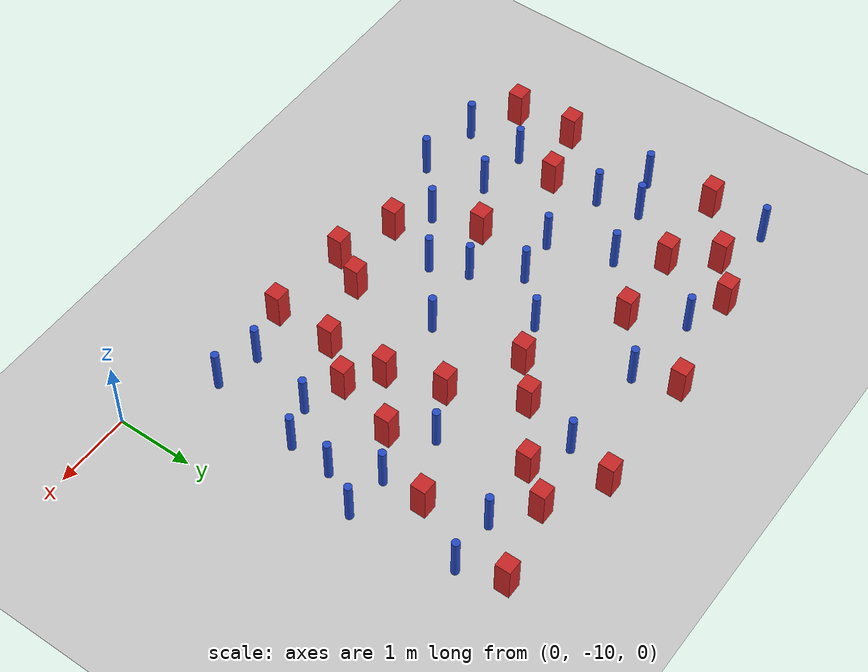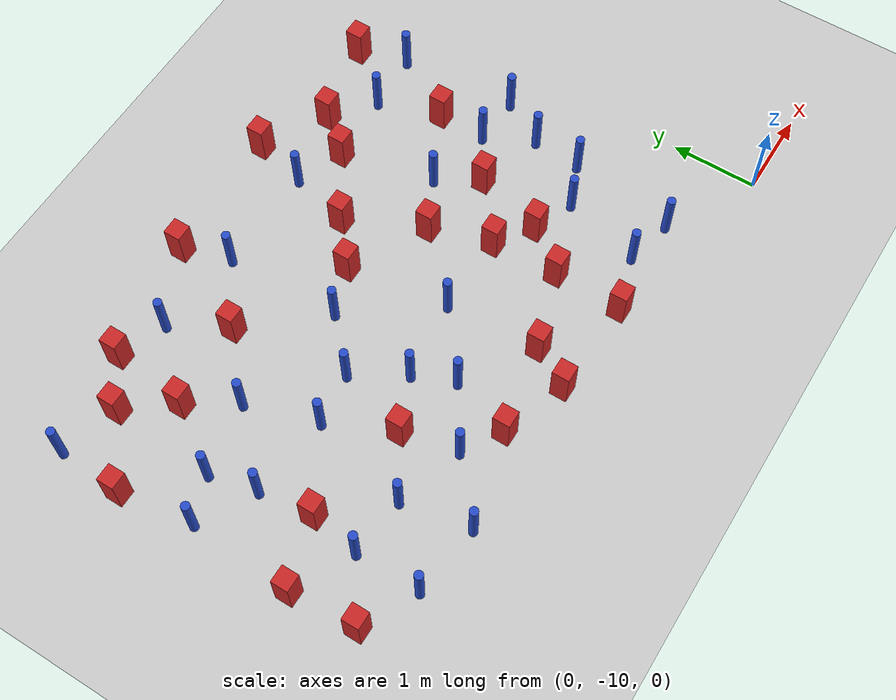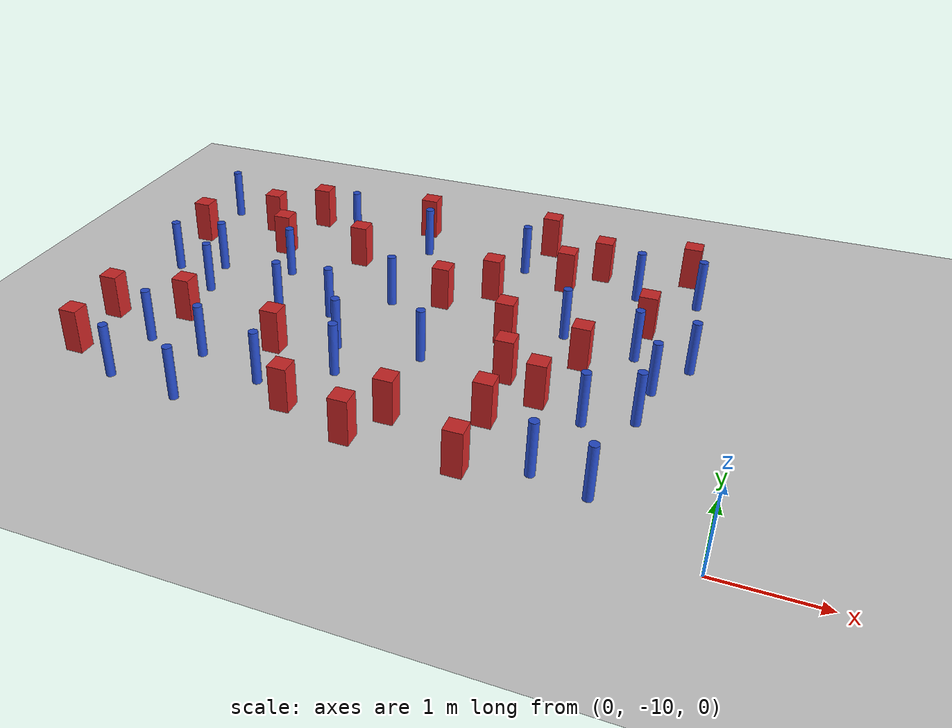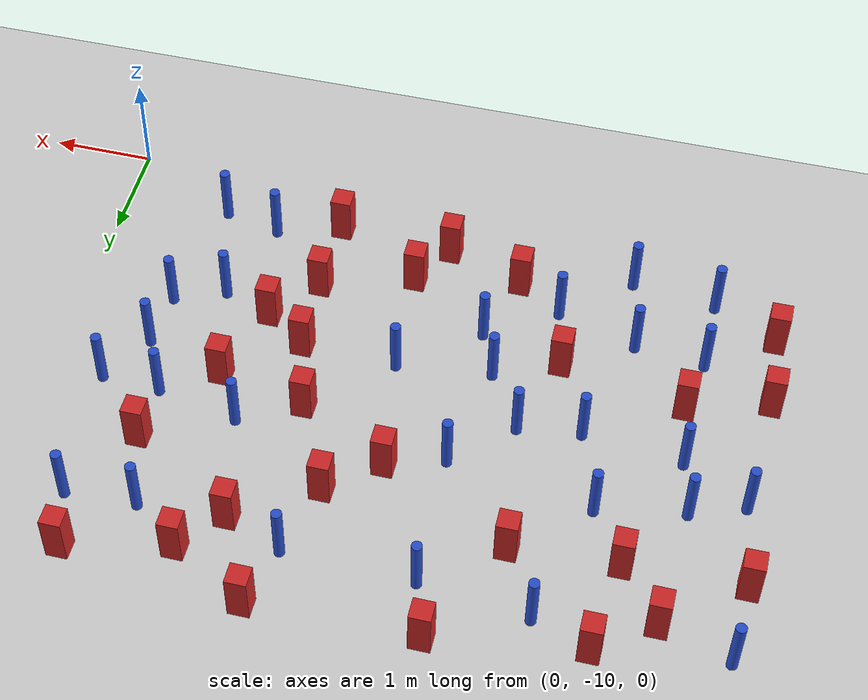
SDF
<sdf version="1.6">
 <world name="default">
  <model name="ground_plane">
   <static>1</static>
   <link name="link">
    <collision name="collision">
     <geometry><plane><normal>0 0 1</normal><size>100 100</size></plane></geometry>
     <surface><friction><ode><mu>100</mu><mu2>50</mu2></ode></friction></surface>
    </collision>
    <visual name="visual">
     <cast_shadows>0</cast_shadows>
     <geometry><plane><normal>0 0 1</normal><size>100 100</size></plane></geometry>
     <material>
      <ambient>1.0 1.0 1.0 1.0</ambient>
      <diffuse>0.8 0.8 0.8 1.0</diffuse>
      <specular>0.01 0.01 0.01 1.000000</specular>
     </material>
    </visual>
   </link>
  </model>
  <model name="pole_obstacle0">
   <static>true</static>
   <pose>-0.643365630243 -5.73914750013 7.38925637345e-09 -8.471706928e-08 1.24976765086e-08 -1.74513093015e-07</pose>
   <link name="link">
    <pose>0 0 0.3 0 -0 0</pose>
    <inertial>
     <mass>1</mass>
     <inertia><ixx>0.145833</ixx><ixy>0</ixy><ixz>0</ixz><iyy>0.145833</iyy><iyz>0</iyz><izz>0.125</izz></inertia>
    </inertial>
    <collision name="collision">
     <geometry><cylinder><radius>0.05</radius><length>.6</length></cylinder></geometry>
    </collision>
    <visual name="visual">
     <geometry><cylinder><radius>0.05</radius><length>.6</length></cylinder></geometry>
     <material>
      <script><name>Gazebo/Blue</name><uri>file://media/materials/scripts/gazebo.material</uri></script>
     </material>
    </visual>
   </link>
  </model>
  <model name="square_post_obstacle4">
   <static>true</static>
   <pose>-2.54340053731 -4.98946207609 1.91545236811e-07 -7.35059704564e-06 1.12565212e-07 2.39332434364e-05</pose>
   <link name="link">
    <pose>0 0 0.25 0 -0 0</pose>
    <inertial>
     <mass>100</mass>
     <inertia>
      <ixx>0.166667</ixx>
      <ixy>0</ixy>
      <ixz>0</ixz>
      <iyy>0.166667</iyy>
      <iyz>0</iyz>
      <izz>0.166667</izz>
     </inertia>
    </inertial>
    <collision name="collision"><geometry><box><size>.2 .2 .5</size></box></geometry></collision>
    <visual name="visual">
     <geometry><box><size>.2 .2 .5</size></box></geometry>
     <material>
      <script><name>Gazebo/Red</name><uri>file://media/materials/scripts/gazebo.material</uri></script>
     </material>
    </visual>
   </link>
  </model>
  <model name="pole_obstacle9">
   <static>true</static>
   <pose>-3.9550344952 -5.57008247758 7.38925637345e-09 -8.47170692799e-08 1.24976764985e-08 -1.74513093022e-07</pose>
   <link name="link">
    <pose>0 0 0.3 0 -0 0</pose>
    <inertial>
     <mass>1</mass>
     <inertia><ixx>0.145833</ixx><ixy>0</ixy><ixz>0</ixz><iyy>0.145833</iyy><iyz>0</iyz><izz>0.125</izz></inertia>
    </inertial>
    <collision name="collision">
     <geometry><cylinder><radius>0.05</radius><length>.6</length></cylinder></geometry>
    </collision>
    <visual name="visual">
     <geometry><cylinder><radius>0.05</radius><length>.6</length></cylinder></geometry>
     <material>
      <script><name>Gazebo/Blue</name><uri>file://media/materials/scripts/gazebo.material</uri></script>
     </material>
    </visual>
   </link>
  </model>
  <model name="square_post_obstacle19">
   <static>true</static>
   <pose>-1.80339025722 -5.40434559586 1.91545236811e-07 -7.35059704564e-06 1.12565212e-07 2.39332434364e-05</pose>
   <link name="link">
    <pose>0 0 0.25 0 -0 0</pose>
    <inertial>
     <mass>100</mass>
     <inertia>
      <ixx>0.166667</ixx>
      <ixy>0</ixy>
      <ixz>0</ixz>
      <iyy>0.166667</iyy>
      <iyz>0</iyz>
      <izz>0.166667</izz>
     </inertia>
    </inertial>
    <collision name="collision"><geometry><box><size>.2 .2 .5</size></box></geometry></collision>
    <visual name="visual">
     <geometry><box><size>.2 .2 .5</size></box></geometry>
     <material>
      <script><name>Gazebo/Red</name><uri>file://media/materials/scripts/gazebo.material</uri></script>
     </material>
    </visual>
   </link>
  </model>
  <model name="pole_obstacle13">
   <static>true</static>
   <pose>-5.31498778144 -6.6896748255 7.38925637345e-09 -8.47170692796e-08 1.24976764786e-08 -1.74513093032e-07</pose>
   <link name="link">
    <pose>0 0 0.3 0 -0 0</pose>
    <inertial>
     <mass>1</mass>
     <inertia><ixx>0.145833</ixx><ixy>0</ixy><ixz>0</ixz><iyy>0.145833</iyy><iyz>0</iyz><izz>0.125</izz></inertia>
    </inertial>
    <collision name="collision">
     <geometry><cylinder><radius>0.05</radius><length>.6</length></cylinder></geometry>
    </collision>
    <visual name="visual">
     <geometry><cylinder><radius>0.05</radius><length>.6</length></cylinder></geometry>
     <material>
      <script><name>Gazebo/Blue</name><uri>file://media/materials/scripts/gazebo.material</uri></script>
     </material>
    </visual>
   </link>
  </model>
  <model name="pole_obstacle14">
   <static>true</static>
   <pose>-4.10841384839 -8.00199502311 7.38925637345e-09 -8.47170692796e-08 1.24976764734e-08 -1.74513093037e-07</pose>
   <link name="link">
    <pose>0 0 0.3 0 -0 0</pose>
    <inertial>
     <mass>1</mass>
     <inertia><ixx>0.145833</ixx><ixy>0</ixy><ixz>0</ixz><iyy>0.145833</iyy><iyz>0</iyz><izz>0.125</izz></inertia>
    </inertial>
    <collision name="collision">
     <geometry><cylinder><radius>0.05</radius><length>.6</length></cylinder></geometry>
    </collision>
    <visual name="visual">
     <geometry><cylinder><radius>0.05</radius><length>.6</length></cylinder></geometry>
     <material>
      <script><name>Gazebo/Blue</name><uri>file://media/materials/scripts/gazebo.material</uri></script>
     </material>
    </visual>
   </link>
  </model>
  <model name="square_post_obstacle27">
   <static>true</static>
   <pose>-2.89596495996 -6.31601227216 1.91545236811e-07 -7.35059704564e-06 1.12565212e-07 2.39332434364e-05</pose>
   <link name="link">
    <pose>0 0 0.25 0 -0 0</pose>
    <inertial>
     <mass>100</mass>
     <inertia>
      <ixx>0.166667</ixx>
      <ixy>0</ixy>
      <ixz>0</ixz>
      <iyy>0.166667</iyy>
      <iyz>0</iyz>
      <izz>0.166667</izz>
     </inertia>
    </inertial>
    <collision name="collision"><geometry><box><size>.2 .2 .5</size></box></geometry></collision>
    <visual name="visual">
     <geometry><box><size>.2 .2 .5</size></box></geometry>
     <material>
      <script><name>Gazebo/Red</name><uri>file://media/materials/scripts/gazebo.material</uri></script>
     </material>
    </visual>
   </link>
  </model>
  <model name="square_post_obstacle30">
   <static>true</static>
   <pose>-2.26640321309 -7.91037060047 1.91545236811e-07 -7.35059704564e-06 1.12565212e-07 2.39332434364e-05</pose>
   <link name="link">
    <pose>0 0 0.25 0 -0 0</pose>
    <inertial>
     <mass>100</mass>
     <inertia>
      <ixx>0.166667</ixx>
      <ixy>0</ixy>
      <ixz>0</ixz>
      <iyy>0.166667</iyy>
      <iyz>0</iyz>
      <izz>0.166667</izz>
     </inertia>
    </inertial>
    <collision name="collision"><geometry><box><size>.2 .2 .5</size></box></geometry></collision>
    <visual name="visual">
     <geometry><box><size>.2 .2 .5</size></box></geometry>
     <material>
      <script><name>Gazebo/Red</name><uri>file://media/materials/scripts/gazebo.material</uri></script>
     </material>
    </visual>
   </link>
  </model>
  <model name="pole_obstacle26">
   <static>true</static>
   <pose>-1.35890309733 -8.38777749532 7.38925637345e-09 -8.47170692798e-08 1.24976764881e-08 -1.74513093027e-07</pose>
   <link name="link">
    <pose>0 0 0.3 0 -0 0</pose>
    <inertial>
     <mass>1</mass>
     <inertia><ixx>0.145833</ixx><ixy>0</ixy><ixz>0</ixz><iyy>0.145833</iyy><iyz>0</iyz><izz>0.125</izz></inertia>
    </inertial>
    <collision name="collision">
     <geometry><cylinder><radius>0.05</radius><length>.6</length></cylinder></geometry>
    </collision>
    <visual name="visual">
     <geometry><cylinder><radius>0.05</radius><length>.6</length></cylinder></geometry>
     <material>
      <script><name>Gazebo/Blue</name><uri>file://media/materials/scripts/gazebo.material</uri></script>
     </material>
    </visual>
   </link>
  </model>
  <model name="pole_obstacle31">
   <static>true</static>
   <pose>-3.9161545903 -6.90918612494 7.38925637345e-09 -8.47170692794e-08 1.24976764468e-08 -1.7451309304e-07</pose>
   <link name="link">
    <pose>0 0 0.3 0 -0 0</pose>
    <inertial>
     <mass>1</mass>
     <inertia><ixx>0.145833</ixx><ixy>0</ixy><ixz>0</ixz><iyy>0.145833</iyy><iyz>0</iyz><izz>0.125</izz></inertia>
    </inertial>
    <collision name="collision">
     <geometry><cylinder><radius>0.05</radius><length>.6</length></cylinder></geometry>
    </collision>
    <visual name="visual">
     <geometry><cylinder><radius>0.05</radius><length>.6</length></cylinder></geometry>
     <material>
      <script><name>Gazebo/Blue</name><uri>file://media/materials/scripts/gazebo.material</uri></script>
     </material>
    </visual>
   </link>
  </model>
  <model name="pole_obstacle38">
   <static>true</static>
   <pose>-6.65198013011 -7.04461324097 7.38925637345e-09 -8.47170692796e-08 1.24976764786e-08 -1.74513093032e-07</pose>
   <link name="link">
    <pose>0 0 0.3 0 -0 0</pose>
    <inertial>
     <mass>1</mass>
     <inertia><ixx>0.145833</ixx><ixy>0</ixy><ixz>0</ixz><iyy>0.145833</iyy><iyz>0</iyz><izz>0.125</izz></inertia>
    </inertial>
    <collision name="collision">
     <geometry><cylinder><radius>0.05</radius><length>.6</length></cylinder></geometry>
    </collision>
    <visual name="visual">
     <geometry><cylinder><radius>0.05</radius><length>.6</length></cylinder></geometry>
     <material>
      <script><name>Gazebo/Blue</name><uri>file://media/materials/scripts/gazebo.material</uri></script>
     </material>
    </visual>
   </link>
  </model>
  <model name="square_post_obstacle39">
   <static>true</static>
   <pose>-3.37200378368 -6.71381019566 1.91545236811e-07 -7.35059704564e-06 1.12565212e-07 2.39332434364e-05</pose>
   <link name="link">
    <pose>0 0 0.25 0 -0 0</pose>
    <inertial>
     <mass>100</mass>
     <inertia>
      <ixx>0.166667</ixx>
      <ixy>0</ixy>
      <ixz>0</ixz>
      <iyy>0.166667</iyy>
      <iyz>0</iyz>
      <izz>0.166667</izz>
     </inertia>
    </inertial>
    <collision name="collision"><geometry><box><size>.2 .2 .5</size></box></geometry></collision>
    <visual name="visual">
     <geometry><box><size>.2 .2 .5</size></box></geometry>
     <material>
      <script><name>Gazebo/Red</name><uri>file://media/materials/scripts/gazebo.material</uri></script>
     </material>
    </visual>
   </link>
  </model>
  <model name="pole_obstacle40">
   <static>true</static>
   <pose>-1.89822982874 -6.90016342159 7.38925637345e-09 -8.47170692799e-08 1.24976765033e-08 -1.74513093018e-07</pose>
   <link name="link">
    <pose>0 0 0.3 0 -0 0</pose>
    <inertial>
     <mass>1</mass>
     <inertia><ixx>0.145833</ixx><ixy>0</ixy><ixz>0</ixz><iyy>0.145833</iyy><iyz>0</iyz><izz>0.125</izz></inertia>
    </inertial>
    <collision name="collision">
     <geometry><cylinder><radius>0.05</radius><length>.6</length></cylinder></geometry>
    </collision>
    <visual name="visual">
     <geometry><cylinder><radius>0.05</radius><length>.6</length></cylinder></geometry>
     <material>
      <script><name>Gazebo/Blue</name><uri>file://media/materials/scripts/gazebo.material</uri></script>
     </material>
    </visual>
   </link>
  </model>
  <model name="pole_obstacle43">
   <static>true</static>
   <pose>-1.32339440428 -5.77225743253 7.38925637345e-09 -8.47170692799e-08 1.24976765033e-08 -1.74513093018e-07</pose>
   <link name="link">
    <pose>0 0 0.3 0 -0 0</pose>
    <inertial>
     <mass>1</mass>
     <inertia><ixx>0.145833</ixx><ixy>0</ixy><ixz>0</ixz><iyy>0.145833</iyy><iyz>0</iyz><izz>0.125</izz></inertia>
    </inertial>
    <collision name="collision">
     <geometry><cylinder><radius>0.05</radius><length>.6</length></cylinder></geometry>
    </collision>
    <visual name="visual">
     <geometry><cylinder><radius>0.05</radius><length>.6</length></cylinder></geometry>
     <material>
      <script><name>Gazebo/Blue</name><uri>file://media/materials/scripts/gazebo.material</uri></script>
     </material>
    </visual>
   </link>
  </model>
  <model name="square_post_obstacle62">
   <static>true</static>
   <pose>-5.9386121998 -8.02040223556 1.91545236811e-07 -7.35059704564e-06 1.12565212e-07 2.39332434364e-05</pose>
   <link name="link">
    <pose>0 0 0.25 0 -0 0</pose>
    <inertial>
     <mass>100</mass>
     <inertia>
      <ixx>0.166667</ixx>
      <ixy>0</ixy>
      <ixz>0</ixz>
      <iyy>0.166667</iyy>
      <iyz>0</iyz>
      <izz>0.166667</izz>
     </inertia>
    </inertial>
    <collision name="collision"><geometry><box><size>.2 .2 .5</size></box></geometry></collision>
    <visual name="visual">
     <geometry><box><size>.2 .2 .5</size></box></geometry>
     <material>
      <script><name>Gazebo/Red</name><uri>file://media/materials/scripts/gazebo.material</uri></script>
     </material>
    </visual>
   </link>
  </model>
  <model name="square_post_obstacle64">
   <static>true</static>
   <pose>-1.85316763519 -8.20361211257 1.91545236811e-07 -7.35059704564e-06 1.12565212e-07 2.39332434364e-05</pose>
   <link name="link">
    <pose>0 0 0.25 0 -0 0</pose>
    <inertial>
     <mass>100</mass>
     <inertia>
      <ixx>0.166667</ixx>
      <ixy>0</ixy>
      <ixz>0</ixz>
      <iyy>0.166667</iyy>
      <iyz>0</iyz>
      <izz>0.166667</izz>
     </inertia>
    </inertial>
    <collision name="collision"><geometry><box><size>.2 .2 .5</size></box></geometry></collision>
    <visual name="visual">
     <geometry><box><size>.2 .2 .5</size></box></geometry>
     <material>
      <script><name>Gazebo/Red</name><uri>file://media/materials/scripts/gazebo.material</uri></script>
     </material>
    </visual>
   </link>
  </model>
  <model name="square_post_obstacle65">
   <static>true</static>
   <pose>-6.76895078318 -6.19407513879 1.91545236811e-07 -7.35059704564e-06 1.12565212e-07 2.39332434364e-05</pose>
   <link name="link">
    <pose>0 0 0.25 0 -0 0</pose>
    <inertial>
     <mass>100</mass>
     <inertia>
      <ixx>0.166667</ixx>
      <ixy>0</ixy>
      <ixz>0</ixz>
      <iyy>0.166667</iyy>
      <iyz>0</iyz>
      <izz>0.166667</izz>
     </inertia>
    </inertial>
    <collision name="collision"><geometry><box><size>.2 .2 .5</size></box></geometry></collision>
    <visual name="visual">
     <geometry><box><size>.2 .2 .5</size></box></geometry>
     <material>
      <script><name>Gazebo/Red</name><uri>file://media/materials/scripts/gazebo.material</uri></script>
     </material>
    </visual>
   </link>
  </model>
  <model name="square_post_obstacle66">
   <static>true</static>
   <pose>-1.61212370151 -7.38804345173 1.91545236811e-07 -7.35059704564e-06 1.12565212e-07 2.39332434364e-05</pose>
   <link name="link">
    <pose>0 0 0.25 0 -0 0</pose>
    <inertial>
     <mass>100</mass>
     <inertia>
      <ixx>0.166667</ixx>
      <ixy>0</ixy>
      <ixz>0</ixz>
      <iyy>0.166667</iyy>
      <iyz>0</iyz>
      <izz>0.166667</izz>
     </inertia>
    </inertial>
    <collision name="collision"><geometry><box><size>.2 .2 .5</size></box></geometry></collision>
    <visual name="visual">
     <geometry><box><size>.2 .2 .5</size></box></geometry>
     <material>
      <script><name>Gazebo/Red</name><uri>file://media/materials/scripts/gazebo.material</uri></script>
     </material>
    </visual>
   </link>
  </model>
  <model name="pole_obstacle66">
   <static>true</static>
   <pose>-6.02354327717 -7.39674445591 7.38925637345e-09 -8.47170692796e-08 1.24976764786e-08 -1.74513093032e-07</pose>
   <link name="link">
    <pose>0 0 0.3 0 -0 0</pose>
    <inertial>
     <mass>1</mass>
     <inertia><ixx>0.145833</ixx><ixy>0</ixy><ixz>0</ixz><iyy>0.145833</iyy><iyz>0</iyz><izz>0.125</izz></inertia>
    </inertial>
    <collision name="collision">
     <geometry><cylinder><radius>0.05</radius><length>.6</length></cylinder></geometry>
    </collision>
    <visual name="visual">
     <geometry><cylinder><radius>0.05</radius><length>.6</length></cylinder></geometry>
     <material>
      <script><name>Gazebo/Blue</name><uri>file://media/materials/scripts/gazebo.material</uri></script>
     </material>
    </visual>
   </link>
  </model>
  <model name="square_post_obstacle71">
   <static>true</static>
   <pose>-4.64732401192 -6.09323604327 1.91545236811e-07 -7.35059704564e-06 1.12565212e-07 2.39332434364e-05</pose>
   <link name="link">
    <pose>0 0 0.25 0 -0 0</pose>
    <inertial>
     <mass>100</mass>
     <inertia>
      <ixx>0.166667</ixx>
      <ixy>0</ixy>
      <ixz>0</ixz>
      <iyy>0.166667</iyy>
      <iyz>0</iyz>
      <izz>0.166667</izz>
     </inertia>
    </inertial>
    <collision name="collision"><geometry><box><size>.2 .2 .5</size></box></geometry></collision>
    <visual name="visual">
     <geometry><box><size>.2 .2 .5</size></box></geometry>
     <material>
      <script><name>Gazebo/Red</name><uri>file://media/materials/scripts/gazebo.material</uri></script>
     </material>
    </visual>
   </link>
  </model>
  <model name="pole_obstacle84">
   <static>true</static>
   <pose>-1.05237606972 -9.42380578069 7.38925637345e-09 -8.47170692798e-08 1.24976764881e-08 -1.74513093027e-07</pose>
   <link name="link">
    <pose>0 0 0.3 0 -0 0</pose>
    <inertial>
     <mass>1</mass>
     <inertia><ixx>0.145833</ixx><ixy>0</ixy><ixz>0</ixz><iyy>0.145833</iyy><iyz>0</iyz><izz>0.125</izz></inertia>
    </inertial>
    <collision name="collision">
     <geometry><cylinder><radius>0.05</radius><length>.6</length></cylinder></geometry>
    </collision>
    <visual name="visual">
     <geometry><cylinder><radius>0.05</radius><length>.6</length></cylinder></geometry>
     <material>
      <script><name>Gazebo/Blue</name><uri>file://media/materials/scripts/gazebo.material</uri></script>
     </material>
    </visual>
   </link>
  </model>
  <model name="pole_obstacle86">
   <static>true</static>
   <pose>-0.526660578268 -7.09758818626 7.38925637345e-09 -8.471706928e-08 1.24976765117e-08 -1.74513093013e-07</pose>
   <link name="link">
    <pose>0 0 0.3 0 -0 0</pose>
    <inertial>
     <mass>1</mass>
     <inertia><ixx>0.145833</ixx><ixy>0</ixy><ixz>0</ixz><iyy>0.145833</iyy><iyz>0</iyz><izz>0.125</izz></inertia>
    </inertial>
    <collision name="collision">
     <geometry><cylinder><radius>0.05</radius><length>.6</length></cylinder></geometry>
    </collision>
    <visual name="visual">
     <geometry><cylinder><radius>0.05</radius><length>.6</length></cylinder></geometry>
     <material>
      <script><name>Gazebo/Blue</name><uri>file://media/materials/scripts/gazebo.material</uri></script>
     </material>
    </visual>
   </link>
  </model>
  <model name="pole_obstacle94">
   <static>true</static>
   <pose>-4.58090362273 -8.90332504319 7.38925637345e-09 -8.471706928e-08 1.24976765081e-08 -1.74513093015e-07</pose>
   <link name="link">
    <pose>0 0 0.3 0 -0 0</pose>
    <inertial>
     <mass>1</mass>
     <inertia><ixx>0.145833</ixx><ixy>0</ixy><ixz>0</ixz><iyy>0.145833</iyy><iyz>0</iyz><izz>0.125</izz></inertia>
    </inertial>
    <collision name="collision">
     <geometry><cylinder><radius>0.05</radius><length>.6</length></cylinder></geometry>
    </collision>
    <visual name="visual">
     <geometry><cylinder><radius>0.05</radius><length>.6</length></cylinder></geometry>
     <material>
      <script><name>Gazebo/Blue</name><uri>file://media/materials/scripts/gazebo.material</uri></script>
     </material>
    </visual>
   </link>
  </model>
  <model name="pole_obstacle104">
   <static>true</static>
   <pose>-4.46035571811 -7.42555879902 7.38925637345e-09 -8.47170692796e-08 1.24976764786e-08 -1.74513093032e-07</pose>
   <link name="link">
    <pose>0 0 0.3 0 -0 0</pose>
    <inertial>
     <mass>1</mass>
     <inertia><ixx>0.145833</ixx><ixy>0</ixy><ixz>0</ixz><iyy>0.145833</iyy><iyz>0</iyz><izz>0.125</izz></inertia>
    </inertial>
    <collision name="collision">
     <geometry><cylinder><radius>0.05</radius><length>.6</length></cylinder></geometry>
    </collision>
    <visual name="visual">
     <geometry><cylinder><radius>0.05</radius><length>.6</length></cylinder></geometry>
     <material>
      <script><name>Gazebo/Blue</name><uri>file://media/materials/scripts/gazebo.material</uri></script>
     </material>
    </visual>
   </link>
  </model>
  <model name="square_post_obstacle92">
   <static>true</static>
   <pose>-4.13011925522 -5.02850115565 1.91545236811e-07 -7.35059704564e-06 1.12565212e-07 2.39332434364e-05</pose>
   <link name="link">
    <pose>0 0 0.25 0 -0 0</pose>
    <inertial>
     <mass>100</mass>
     <inertia>
      <ixx>0.166667</ixx>
      <ixy>0</ixy>
      <ixz>0</ixz>
      <iyy>0.166667</iyy>
      <iyz>0</iyz>
      <izz>0.166667</izz>
     </inertia>
    </inertial>
    <collision name="collision"><geometry><box><size>.2 .2 .5</size></box></geometry></collision>
    <visual name="visual">
     <geometry><box><size>.2 .2 .5</size></box></geometry>
     <material>
      <script><name>Gazebo/Red</name><uri>file://media/materials/scripts/gazebo.material</uri></script>
     </material>
    </visual>
   </link>
  </model>
  <model name="pole_obstacle111">
   <static>true</static>
   <pose>-1.10215887442 -7.06389045202 7.38925637345e-09 -8.47170692799e-08 1.24976765033e-08 -1.74513093018e-07</pose>
   <link name="link">
    <pose>0 0 0.3 0 -0 0</pose>
    <inertial>
     <mass>1</mass>
     <inertia><ixx>0.145833</ixx><ixy>0</ixy><ixz>0</ixz><iyy>0.145833</iyy><iyz>0</iyz><izz>0.125</izz></inertia>
    </inertial>
    <collision name="collision">
     <geometry><cylinder><radius>0.05</radius><length>.6</length></cylinder></geometry>
    </collision>
    <visual name="visual">
     <geometry><cylinder><radius>0.05</radius><length>.6</length></cylinder></geometry>
     <material>
      <script><name>Gazebo/Blue</name><uri>file://media/materials/scripts/gazebo.material</uri></script>
     </material>
    </visual>
   </link>
  </model>
  <model name="pole_obstacle112">
   <static>true</static>
   <pose>-3.91797729296 -8.46917214775 7.38925637345e-09 -8.47170692793e-08 1.24976764408e-08 -1.74513093041e-07</pose>
   <link name="link">
    <pose>0 0 0.3 0 -0 0</pose>
    <inertial>
     <mass>1</mass>
     <inertia><ixx>0.145833</ixx><ixy>0</ixy><ixz>0</ixz><iyy>0.145833</iyy><iyz>0</iyz><izz>0.125</izz></inertia>
    </inertial>
    <collision name="collision">
     <geometry><cylinder><radius>0.05</radius><length>.6</length></cylinder></geometry>
    </collision>
    <visual name="visual">
     <geometry><cylinder><radius>0.05</radius><length>.6</length></cylinder></geometry>
     <material>
      <script><name>Gazebo/Blue</name><uri>file://media/materials/scripts/gazebo.material</uri></script>
     </material>
    </visual>
   </link>
  </model>
  <model name="square_post_obstacle109">
   <static>true</static>
   <pose>-6.05713490274 -5.63305967369 1.91545236811e-07 -7.35059704564e-06 1.12565212e-07 2.39332434364e-05</pose>
   <link name="link">
    <pose>0 0 0.25 0 -0 0</pose>
    <inertial>
     <mass>100</mass>
     <inertia>
      <ixx>0.166667</ixx>
      <ixy>0</ixy>
      <ixz>0</ixz>
      <iyy>0.166667</iyy>
      <iyz>0</iyz>
      <izz>0.166667</izz>
     </inertia>
    </inertial>
    <collision name="collision"><geometry><box><size>.2 .2 .5</size></box></geometry></collision>
    <visual name="visual">
     <geometry><box><size>.2 .2 .5</size></box></geometry>
     <material>
      <script><name>Gazebo/Red</name><uri>file://media/materials/scripts/gazebo.material</uri></script>
     </material>
    </visual>
   </link>
  </model>
  <model name="pole_obstacle137">
   <static>true</static>
   <pose>-6.72687907832 -5.43037828847 7.38925637345e-09 -8.47170692796e-08 1.24976764786e-08 -1.74513093032e-07</pose>
   <link name="link">
    <pose>0 0 0.3 0 -0 0</pose>
    <inertial>
     <mass>1</mass>
     <inertia><ixx>0.145833</ixx><ixy>0</ixy><ixz>0</ixz><iyy>0.145833</iyy><iyz>0</iyz><izz>0.125</izz></inertia>
    </inertial>
    <collision name="collision">
     <geometry><cylinder><radius>0.05</radius><length>.6</length></cylinder></geometry>
    </collision>
    <visual name="visual">
     <geometry><cylinder><radius>0.05</radius><length>.6</length></cylinder></geometry>
     <material>
      <script><name>Gazebo/Blue</name><uri>file://media/materials/scripts/gazebo.material</uri></script>
     </material>
    </visual>
   </link>
  </model>
  <model name="square_post_obstacle119">
   <static>true</static>
   <pose>-1.09210251637 -6.50160032033 1.91545236811e-07 -7.35059704564e-06 1.12565212e-07 2.39332434364e-05</pose>
   <link name="link">
    <pose>0 0 0.25 0 -0 0</pose>
    <inertial>
     <mass>100</mass>
     <inertia>
      <ixx>0.166667</ixx>
      <ixy>0</ixy>
      <ixz>0</ixz>
      <iyy>0.166667</iyy>
      <iyz>0</iyz>
      <izz>0.166667</izz>
     </inertia>
    </inertial>
    <collision name="collision"><geometry><box><size>.2 .2 .5</size></box></geometry></collision>
    <visual name="visual">
     <geometry><box><size>.2 .2 .5</size></box></geometry>
     <material>
      <script><name>Gazebo/Red</name><uri>file://media/materials/scripts/gazebo.material</uri></script>
     </material>
    </visual>
   </link>
  </model>
  <model name="square_post_obstacle127">
   <static>true</static>
   <pose>-2.47928094593 -7.19816627359 1.91545236811e-07 -7.35059704564e-06 1.12565212e-07 2.39332434364e-05</pose>
   <link name="link">
    <pose>0 0 0.25 0 -0 0</pose>
    <inertial>
     <mass>100</mass>
     <inertia>
      <ixx>0.166667</ixx>
      <ixy>0</ixy>
      <ixz>0</ixz>
      <iyy>0.166667</iyy>
      <iyz>0</iyz>
      <izz>0.166667</izz>
     </inertia>
    </inertial>
    <collision name="collision"><geometry><box><size>.2 .2 .5</size></box></geometry></collision>
    <visual name="visual">
     <geometry><box><size>.2 .2 .5</size></box></geometry>
     <material>
      <script><name>Gazebo/Red</name><uri>file://media/materials/scripts/gazebo.material</uri></script>
     </material>
    </visual>
   </link>
  </model>
  <model name="square_post_obstacle128">
   <static>true</static>
   <pose>-3.38321354166 -9.43230963654 1.91545236811e-07 -7.35059704564e-06 1.12565212e-07 2.39332434364e-05</pose>
   <link name="link">
    <pose>0 0 0.25 0 -0 0</pose>
    <inertial>
     <mass>100</mass>
     <inertia>
      <ixx>0.166667</ixx>
      <ixy>0</ixy>
      <ixz>0</ixz>
      <iyy>0.166667</iyy>
      <iyz>0</iyz>
      <izz>0.166667</izz>
     </inertia>
    </inertial>
    <collision name="collision"><geometry><box><size>.2 .2 .5</size></box></geometry></collision>
    <visual name="visual">
     <geometry><box><size>.2 .2 .5</size></box></geometry>
     <material>
      <script><name>Gazebo/Red</name><uri>file://media/materials/scripts/gazebo.material</uri></script>
     </material>
    </visual>
   </link>
  </model>
  <model name="square_post_obstacle129">
   <static>true</static>
   <pose>-3.12379293088 -8.98513915252 1.91545236811e-07 -7.35059704564e-06 1.12565212e-07 2.39332434364e-05</pose>
   <link name="link">
    <pose>0 0 0.25 0 -0 0</pose>
    <inertial>
     <mass>100</mass>
     <inertia>
      <ixx>0.166667</ixx>
      <ixy>0</ixy>
      <ixz>0</ixz>
      <iyy>0.166667</iyy>
      <iyz>0</iyz>
      <izz>0.166667</izz>
     </inertia>
    </inertial>
    <collision name="collision"><geometry><box><size>.2 .2 .5</size></box></geometry></collision>
    <visual name="visual">
     <geometry><box><size>.2 .2 .5</size></box></geometry>
     <material>
      <script><name>Gazebo/Red</name><uri>file://media/materials/scripts/gazebo.material</uri></script>
     </material>
    </visual>
   </link>
  </model>
  <model name="square_post_obstacle133">
   <static>true</static>
   <pose>-5.65537469554 -6.15435571392 1.91545236811e-07 -7.35059704564e-06 1.12565212e-07 2.39332434364e-05</pose>
   <link name="link">
    <pose>0 0 0.25 0 -0 0</pose>
    <inertial>
     <mass>100</mass>
     <inertia>
      <ixx>0.166667</ixx>
      <ixy>0</ixy>
      <ixz>0</ixz>
      <iyy>0.166667</iyy>
      <iyz>0</iyz>
      <izz>0.166667</izz>
     </inertia>
    </inertial>
    <collision name="collision"><geometry><box><size>.2 .2 .5</size></box></geometry></collision>
    <visual name="visual">
     <geometry><box><size>.2 .2 .5</size></box></geometry>
     <material>
      <script><name>Gazebo/Red</name><uri>file://media/materials/scripts/gazebo.material</uri></script>
     </material>
    </visual>
   </link>
  </model>
  <model name="square_post_obstacle136">
   <static>true</static>
   <pose>-2.15313826457 -5.8231945815 1.91545236811e-07 -7.35059704564e-06 1.12565212e-07 2.39332434364e-05</pose>
   <link name="link">
    <pose>0 0 0.25 0 -0 0</pose>
    <inertial>
     <mass>100</mass>
     <inertia>
      <ixx>0.166667</ixx>
      <ixy>0</ixy>
      <ixz>0</ixz>
      <iyy>0.166667</iyy>
      <iyz>0</iyz>
      <izz>0.166667</izz>
     </inertia>
    </inertial>
    <collision name="collision"><geometry><box><size>.2 .2 .5</size></box></geometry></collision>
    <visual name="visual">
     <geometry><box><size>.2 .2 .5</size></box></geometry>
     <material>
      <script><name>Gazebo/Red</name><uri>file://media/materials/scripts/gazebo.material</uri></script>
     </material>
    </visual>
   </link>
  </model>
  <model name="pole_obstacle147">
   <static>true</static>
   <pose>-4.99438738492 -5.44536761502 7.38925637345e-09 -8.47170692796e-08 1.24976764786e-08 -1.74513093032e-07</pose>
   <link name="link">
    <pose>0 0 0.3 0 -0 0</pose>
    <inertial>
     <mass>1</mass>
     <inertia><ixx>0.145833</ixx><ixy>0</ixy><ixz>0</ixz><iyy>0.145833</iyy><iyz>0</iyz><izz>0.125</izz></inertia>
    </inertial>
    <collision name="collision">
     <geometry><cylinder><radius>0.05</radius><length>.6</length></cylinder></geometry>
    </collision>
    <visual name="visual">
     <geometry><cylinder><radius>0.05</radius><length>.6</length></cylinder></geometry>
     <material>
      <script><name>Gazebo/Blue</name><uri>file://media/materials/scripts/gazebo.material</uri></script>
     </material>
    </visual>
   </link>
  </model>
  <model name="pole_obstacle153">
   <static>true</static>
   <pose>-1.60872593571 -9.29597470924 7.38925637345e-09 -8.47170692798e-08 1.24976764881e-08 -1.74513093027e-07</pose>
   <link name="link">
    <pose>0 0 0.3 0 -0 0</pose>
    <inertial>
     <mass>1</mass>
     <inertia><ixx>0.145833</ixx><ixy>0</ixy><ixz>0</ixz><iyy>0.145833</iyy><iyz>0</iyz><izz>0.125</izz></inertia>
    </inertial>
    <collision name="collision">
     <geometry><cylinder><radius>0.05</radius><length>.6</length></cylinder></geometry>
    </collision>
    <visual name="visual">
     <geometry><cylinder><radius>0.05</radius><length>.6</length></cylinder></geometry>
     <material>
      <script><name>Gazebo/Blue</name><uri>file://media/materials/scripts/gazebo.material</uri></script>
     </material>
    </visual>
   </link>
  </model>
  <model name="square_post_obstacle142">
   <static>true</static>
   <pose>-2.23506999239 -8.69098216531 1.91545236811e-07 -7.35059704564e-06 1.12565212e-07 2.39332434364e-05</pose>
   <link name="link">
    <pose>0 0 0.25 0 -0 0</pose>
    <inertial>
     <mass>100</mass>
     <inertia>
      <ixx>0.166667</ixx>
      <ixy>0</ixy>
      <ixz>0</ixz>
      <iyy>0.166667</iyy>
      <iyz>0</iyz>
      <izz>0.166667</izz>
     </inertia>
    </inertial>
    <collision name="collision"><geometry><box><size>.2 .2 .5</size></box></geometry></collision>
    <visual name="visual">
     <geometry><box><size>.2 .2 .5</size></box></geometry>
     <material>
      <script><name>Gazebo/Red</name><uri>file://media/materials/scripts/gazebo.material</uri></script>
     </material>
    </visual>
   </link>
  </model>
  <model name="square_post_obstacle146">
   <static>true</static>
   <pose>-4.71726601437 -8.26102654347 1.91545236811e-07 -7.35059704564e-06 1.12565212e-07 2.39332434364e-05</pose>
   <link name="link">
    <pose>0 0 0.25 0 -0 0</pose>
    <inertial>
     <mass>100</mass>
     <inertia>
      <ixx>0.166667</ixx>
      <ixy>0</ixy>
      <ixz>0</ixz>
      <iyy>0.166667</iyy>
      <iyz>0</iyz>
      <izz>0.166667</izz>
     </inertia>
    </inertial>
    <collision name="collision"><geometry><box><size>.2 .2 .5</size></box></geometry></collision>
    <visual name="visual">
     <geometry><box><size>.2 .2 .5</size></box></geometry>
     <material>
      <script><name>Gazebo/Red</name><uri>file://media/materials/scripts/gazebo.material</uri></script>
     </material>
    </visual>
   </link>
  </model>
  <model name="square_post_obstacle152">
   <static>true</static>
   <pose>-0.8131856805 -5.17886540668 1.91545236811e-07 -7.35059704564e-06 1.12565212e-07 2.39332434364e-05</pose>
   <link name="link">
    <pose>0 0 0.25 0 -0 0</pose>
    <inertial>
     <mass>100</mass>
     <inertia>
      <ixx>0.166667</ixx>
      <ixy>0</ixy>
      <ixz>0</ixz>
      <iyy>0.166667</iyy>
      <iyz>0</iyz>
      <izz>0.166667</izz>
     </inertia>
    </inertial>
    <collision name="collision"><geometry><box><size>.2 .2 .5</size></box></geometry></collision>
    <visual name="visual">
     <geometry><box><size>.2 .2 .5</size></box></geometry>
     <material>
      <script><name>Gazebo/Red</name><uri>file://media/materials/scripts/gazebo.material</uri></script>
     </material>
    </visual>
   </link>
  </model>
  <model name="pole_obstacle164">
   <static>true</static>
   <pose>-0.873138155876 -8.1892149375 7.38925637345e-09 -8.47170692797e-08 1.249767648e-08 -1.74513093032e-07</pose>
   <link name="link">
    <pose>0 0 0.3 0 -0 0</pose>
    <inertial>
     <mass>1</mass>
     <inertia><ixx>0.145833</ixx><ixy>0</ixy><ixz>0</ixz><iyy>0.145833</iyy><iyz>0</iyz><izz>0.125</izz></inertia>
    </inertial>
    <collision name="collision">
     <geometry><cylinder><radius>0.05</radius><length>.6</length></cylinder></geometry>
    </collision>
    <visual name="visual">
     <geometry><cylinder><radius>0.05</radius><length>.6</length></cylinder></geometry>
     <material>
      <script><name>Gazebo/Blue</name><uri>file://media/materials/scripts/gazebo.material</uri></script>
     </material>
    </visual>
   </link>
  </model>
  <model name="square_post_obstacle162">
   <static>true</static>
   <pose>-2.25207949742 -9.4884378351 1.91545236811e-07 -7.35059704564e-06 1.12565212e-07 2.39332434364e-05</pose>
   <link name="link">
    <pose>0 0 0.25 0 -0 0</pose>
    <inertial>
     <mass>100</mass>
     <inertia>
      <ixx>0.166667</ixx>
      <ixy>0</ixy>
      <ixz>0</ixz>
      <iyy>0.166667</iyy>
      <iyz>0</iyz>
      <izz>0.166667</izz>
     </inertia>
    </inertial>
    <collision name="collision"><geometry><box><size>.2 .2 .5</size></box></geometry></collision>
    <visual name="visual">
     <geometry><box><size>.2 .2 .5</size></box></geometry>
     <material>
      <script><name>Gazebo/Red</name><uri>file://media/materials/scripts/gazebo.material</uri></script>
     </material>
    </visual>
   </link>
  </model>
  <model name="square_post_obstacle163">
   <static>true</static>
   <pose>-6.66626248667 -9.02921611817 1.91545236811e-07 -7.35059704564e-06 1.12565212e-07 2.39332434364e-05</pose>
   <link name="link">
    <pose>0 0 0.25 0 -0 0</pose>
    <inertial>
     <mass>100</mass>
     <inertia>
      <ixx>0.166667</ixx>
      <ixy>0</ixy>
      <ixz>0</ixz>
      <iyy>0.166667</iyy>
      <iyz>0</iyz>
      <izz>0.166667</izz>
     </inertia>
    </inertial>
    <collision name="collision"><geometry><box><size>.2 .2 .5</size></box></geometry></collision>
    <visual name="visual">
     <geometry><box><size>.2 .2 .5</size></box></geometry>
     <material>
      <script><name>Gazebo/Red</name><uri>file://media/materials/scripts/gazebo.material</uri></script>
     </material>
    </visual>
   </link>
  </model>
  <model name="pole_obstacle173">
   <static>true</static>
   <pose>-6.04511138957 -8.59458673306 7.38925637345e-09 -8.471706928e-08 1.24976765081e-08 -1.74513093015e-07</pose>
   <link name="link">
    <pose>0 0 0.3 0 -0 0</pose>
    <inertial>
     <mass>1</mass>
     <inertia><ixx>0.145833</ixx><ixy>0</ixy><ixz>0</ixz><iyy>0.145833</iyy><iyz>0</iyz><izz>0.125</izz></inertia>
    </inertial>
    <collision name="collision">
     <geometry><cylinder><radius>0.05</radius><length>.6</length></cylinder></geometry>
    </collision>
    <visual name="visual">
     <geometry><cylinder><radius>0.05</radius><length>.6</length></cylinder></geometry>
     <material>
      <script><name>Gazebo/Blue</name><uri>file://media/materials/scripts/gazebo.material</uri></script>
     </material>
    </visual>
   </link>
  </model>
  <model name="pole_obstacle175">
   <static>true</static>
   <pose>-6.14438211247 -6.85182103593 7.38925637345e-09 -8.47170692796e-08 1.24976764786e-08 -1.74513093032e-07</pose>
   <link name="link">
    <pose>0 0 0.3 0 -0 0</pose>
    <inertial>
     <mass>1</mass>
     <inertia><ixx>0.145833</ixx><ixy>0</ixy><ixz>0</ixz><iyy>0.145833</iyy><iyz>0</iyz><izz>0.125</izz></inertia>
    </inertial>
    <collision name="collision">
     <geometry><cylinder><radius>0.05</radius><length>.6</length></cylinder></geometry>
    </collision>
    <visual name="visual">
     <geometry><cylinder><radius>0.05</radius><length>.6</length></cylinder></geometry>
     <material>
      <script><name>Gazebo/Blue</name><uri>file://media/materials/scripts/gazebo.material</uri></script>
     </material>
    </visual>
   </link>
  </model>
  <model name="pole_obstacle187">
   <static>true</static>
   <pose>-6.0429924774 -9.34514685434 7.38925637345e-09 -8.471706928e-08 1.24976765081e-08 -1.74513093015e-07</pose>
   <link name="link">
    <pose>0 0 0.3 0 -0 0</pose>
    <inertial>
     <mass>1</mass>
     <inertia><ixx>0.145833</ixx><ixy>0</ixy><ixz>0</ixz><iyy>0.145833</iyy><iyz>0</iyz><izz>0.125</izz></inertia>
    </inertial>
    <collision name="collision">
     <geometry><cylinder><radius>0.05</radius><length>.6</length></cylinder></geometry>
    </collision>
    <visual name="visual">
     <geometry><cylinder><radius>0.05</radius><length>.6</length></cylinder></geometry>
     <material>
      <script><name>Gazebo/Blue</name><uri>file://media/materials/scripts/gazebo.material</uri></script>
     </material>
    </visual>
   </link>
  </model>
  <model name="square_post_obstacle176">
   <static>true</static>
   <pose>-4.13989657885 -9.17655723768 1.91545236811e-07 -7.35059704564e-06 1.12565212e-07 2.39332434364e-05</pose>
   <link name="link">
    <pose>0 0 0.25 0 -0 0</pose>
    <inertial>
     <mass>100</mass>
     <inertia>
      <ixx>0.166667</ixx>
      <ixy>0</ixy>
      <ixz>0</ixz>
      <iyy>0.166667</iyy>
      <iyz>0</iyz>
      <izz>0.166667</izz>
     </inertia>
    </inertial>
    <collision name="collision"><geometry><box><size>.2 .2 .5</size></box></geometry></collision>
    <visual name="visual">
     <geometry><box><size>.2 .2 .5</size></box></geometry>
     <material>
      <script><name>Gazebo/Red</name><uri>file://media/materials/scripts/gazebo.material</uri></script>
     </material>
    </visual>
   </link>
  </model>
  <model name="square_post_obstacle190">
   <static>true</static>
   <pose>-5.53800946618 -5.25239015576 1.91545236811e-07 -7.35059704564e-06 1.12565212e-07 2.39332434364e-05</pose>
   <link name="link">
    <pose>0 0 0.25 0 -0 0</pose>
    <inertial>
     <mass>100</mass>
     <inertia>
      <ixx>0.166667</ixx>
      <ixy>0</ixy>
      <ixz>0</ixz>
      <iyy>0.166667</iyy>
      <iyz>0</iyz>
      <izz>0.166667</izz>
     </inertia>
    </inertial>
    <collision name="collision"><geometry><box><size>.2 .2 .5</size></box></geometry></collision>
    <visual name="visual">
     <geometry><box><size>.2 .2 .5</size></box></geometry>
     <material>
      <script><name>Gazebo/Red</name><uri>file://media/materials/scripts/gazebo.material</uri></script>
     </material>
    </visual>
   </link>
  </model>
  <model name="square_post_obstacle195">
   <static>true</static>
   <pose>-6.71809269842 -8.25479957488 1.91545236811e-07 -7.35059704564e-06 1.12565212e-07 2.39332434364e-05</pose>
   <link name="link">
    <pose>0 0 0.25 0 -0 0</pose>
    <inertial>
     <mass>100</mass>
     <inertia>
      <ixx>0.166667</ixx>
      <ixy>0</ixy>
      <ixz>0</ixz>
      <iyy>0.166667</iyy>
      <iyz>0</iyz>
      <izz>0.166667</izz>
     </inertia>
    </inertial>
    <collision name="collision"><geometry><box><size>.2 .2 .5</size></box></geometry></collision>
    <visual name="visual">
     <geometry><box><size>.2 .2 .5</size></box></geometry>
     <material>
      <script><name>Gazebo/Red</name><uri>file://media/materials/scripts/gazebo.material</uri></script>
     </material>
    </visual>
   </link>
  </model>
  <model name="pole_obstacle190">
   <static>true</static>
   <pose>-2.70607999043 -5.59940997922 7.38925637345e-09 -8.47170692798e-08 1.24976765033e-08 -1.74513093019e-07</pose>
   <link name="link">
    <pose>0 0 0.3 0 -0 0</pose>
    <inertial>
     <mass>1</mass>
     <inertia><ixx>0.145833</ixx><ixy>0</ixy><ixz>0</ixz><iyy>0.145833</iyy><iyz>0</iyz><izz>0.125</izz></inertia>
    </inertial>
    <collision name="collision">
     <geometry><cylinder><radius>0.05</radius><length>.6</length></cylinder></geometry>
    </collision>
    <visual name="visual">
     <geometry><cylinder><radius>0.05</radius><length>.6</length></cylinder></geometry>
     <material>
      <script><name>Gazebo/Blue</name><uri>file://media/materials/scripts/gazebo.material</uri></script>
     </material>
    </visual>
   </link>
  </model>
  <model name="pole_obstacle197">
   <static>true</static>
   <pose>-0.828212990425 -7.62148997922 7.38925637345e-09 -8.471706928e-08 1.24976765118e-08 -1.74513093013e-07</pose>
   <link name="link">
    <pose>0 0 0.3 0 -0 0</pose>
    <inertial>
     <mass>1</mass>
     <inertia><ixx>0.145833</ixx><ixy>0</ixy><ixz>0</ixz><iyy>0.145833</iyy><iyz>0</iyz><izz>0.125</izz></inertia>
    </inertial>
    <collision name="collision">
     <geometry><cylinder><radius>0.05</radius><length>.6</length></cylinder></geometry>
    </collision>
    <visual name="visual">
     <geometry><cylinder><radius>0.05</radius><length>.6</length></cylinder></geometry>
     <material>
      <script><name>Gazebo/Blue</name><uri>file://media/materials/scripts/gazebo.material</uri></script>
     </material>
    </visual>
   </link>
  </model>
  <model name="pole_obstacle201">
   <static>true</static>
   <pose>-3.19111999043 -7.89228997922 7.38925637345e-09 -8.47170692794e-08 1.24976764468e-08 -1.7451309304e-07</pose>
   <link name="link">
    <pose>0 0 0.3 0 -0 0</pose>
    <inertial>
     <mass>1</mass>
     <inertia><ixx>0.145833</ixx><ixy>0</ixy><ixz>0</ixz><iyy>0.145833</iyy><iyz>0</iyz><izz>0.125</izz></inertia>
    </inertial>
    <collision name="collision">
     <geometry><cylinder><radius>0.05</radius><length>.6</length></cylinder></geometry>
    </collision>
    <visual name="visual">
     <geometry><cylinder><radius>0.05</radius><length>.6</length></cylinder></geometry>
     <material>
      <script><name>Gazebo/Blue</name><uri>file://media/materials/scripts/gazebo.material</uri></script>
     </material>
    </visual>
   </link>
  </model>
  <model name="pole_obstacle211">
   <static>true</static>
   <pose>-5.21965999043 -9.45608997922 7.38925637345e-09 -8.471706928e-08 1.24976765081e-08 -1.74513093015e-07</pose>
   <link name="link">
    <pose>0 0 0.3 0 -0 0</pose>
    <inertial>
     <mass>1</mass>
     <inertia><ixx>0.145833</ixx><ixy>0</ixy><ixz>0</ixz><iyy>0.145833</iyy><iyz>0</iyz><izz>0.125</izz></inertia>
    </inertial>
    <collision name="collision">
     <geometry><cylinder><radius>0.05</radius><length>.6</length></cylinder></geometry>
    </collision>
    <visual name="visual">
     <geometry><cylinder><radius>0.05</radius><length>.6</length></cylinder></geometry>
     <material>
      <script><name>Gazebo/Blue</name><uri>file://media/materials/scripts/gazebo.material</uri></script>
     </material>
    </visual>
   </link>
  </model>
  <model name="pole_obstacle220">
   <static>true</static>
   <pose>-5.06154999043 -7.50738997922 7.38925637345e-09 -8.47170692796e-08 1.24976764786e-08 -1.74513093032e-07</pose>
   <link name="link">
    <pose>0 0 0.3 0 -0 0</pose>
    <inertial>
     <mass>1</mass>
     <inertia><ixx>0.145833</ixx><ixy>0</ixy><ixz>0</ixz><iyy>0.145833</iyy><iyz>0</iyz><izz>0.125</izz></inertia>
    </inertial>
    <collision name="collision">
     <geometry><cylinder><radius>0.05</radius><length>.6</length></cylinder></geometry>
    </collision>
    <visual name="visual">
     <geometry><cylinder><radius>0.05</radius><length>.6</length></cylinder></geometry>
     <material>
      <script><name>Gazebo/Blue</name><uri>file://media/materials/scripts/gazebo.material</uri></script>
     </material>
    </visual>
   </link>
  </model>
  <model name="pole_obstacle223">
   <static>true</static>
   <pose>-5.36478999043 -8.66423997922 7.38925637345e-09 -8.471706928e-08 1.24976765081e-08 -1.74513093015e-07</pose>
   <link name="link">
    <pose>0 0 0.3 0 -0 0</pose>
    <inertial>
     <mass>1</mass>
     <inertia><ixx>0.145833</ixx><ixy>0</ixy><ixz>0</ixz><iyy>0.145833</iyy><iyz>0</iyz><izz>0.125</izz></inertia>
    </inertial>
    <collision name="collision">
     <geometry><cylinder><radius>0.05</radius><length>.6</length></cylinder></geometry>
    </collision>
    <visual name="visual">
     <geometry><cylinder><radius>0.05</radius><length>.6</length></cylinder></geometry>
     <material>
      <script><name>Gazebo/Blue</name><uri>file://media/materials/scripts/gazebo.material</uri></script>
     </material>
    </visual>
   </link>
  </model>
 </world>
</sdf>
